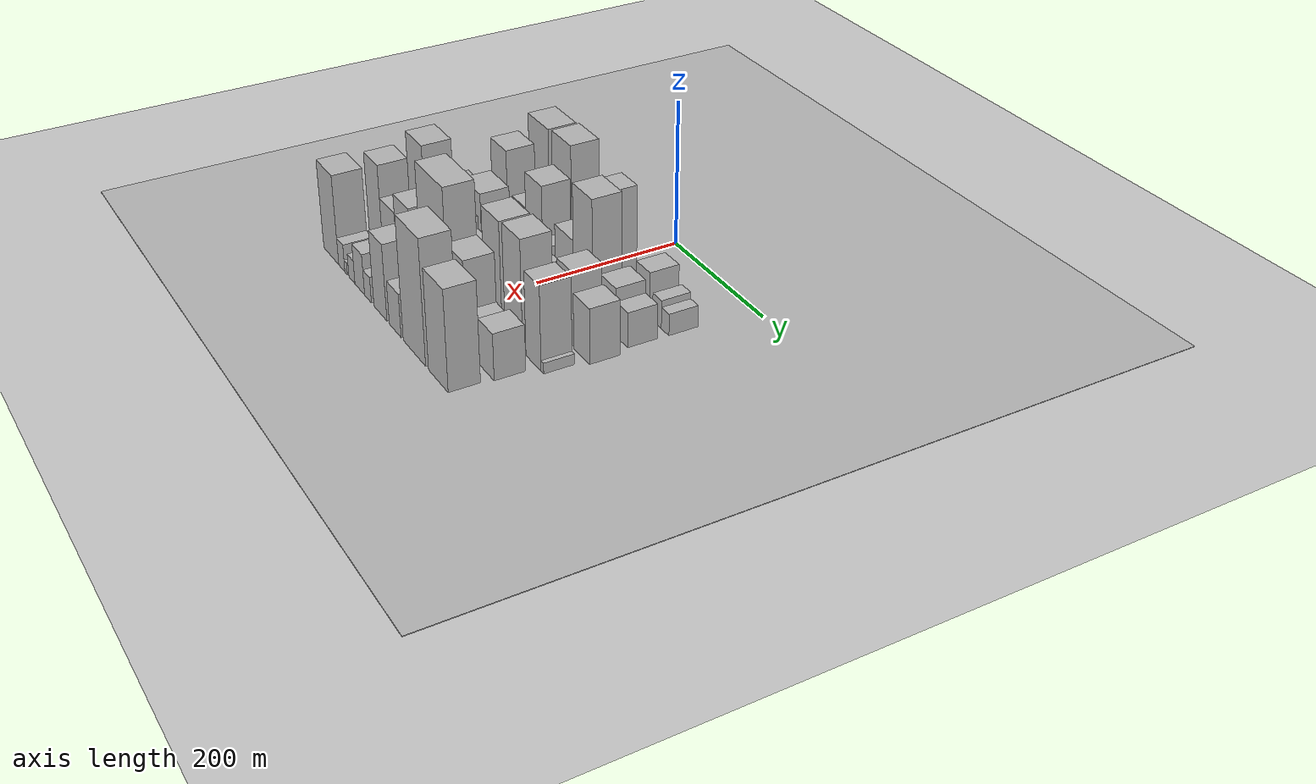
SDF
<sdf version="1.6">
 <world name="default">
  <include><name>ground_plane_1</name><uri>model://HANNAS_ground_plane</uri></include>
  <include>
   <name>ground_plane_2</name>
   <uri>model://HANNAS_ground_plane</uri>
   <pose>100 0 0  0 0 0</pose>
  </include>
  <model name="building_21">
   <static>1</static>
   <pose>100.0000 -186.2058 0 0.000000 0.000000 0.000000</pose>
   <link name="link">
    <pose>0 0 22.50 0 0 0</pose>
    <collision name="collision"><geometry><box><size>40.0000 26.3457 45.0000</size></box></geometry></collision>
    <visual name="visual">
     <cast_shadows>0</cast_shadows>
     <geometry><box><size>40.0000 26.3457 45.0000</size></box></geometry>
     <material>
      <script>
       <uri>model://HANNAS_wall/materials/scripts</uri>
       <uri>model://HANNAS_wall/materials/textures</uri>
       <name>vrc/HANNAS_wall</name>
      </script>
     </material>
    </visual>
   </link>
  </model>
  <model name="building_22">
   <static>1</static>
   <pose>100.0000 -145.5130 0 0.000000 0.000000 0.000000</pose>
   <link name="link">
    <pose>0 0 70.50 0 0 0</pose>
    <collision name="collision"><geometry><box><size>40.0000 55.0400 141.0000</size></box></geometry></collision>
    <visual name="visual">
     <cast_shadows>0</cast_shadows>
     <geometry><box><size>40.0000 55.0400 141.0000</size></box></geometry>
     <material>
      <script>
       <uri>model://HANNAS_wall/materials/scripts</uri>
       <uri>model://HANNAS_wall/materials/textures</uri>
       <name>vrc/HANNAS_wall</name>
      </script>
     </material>
    </visual>
   </link>
  </model>
  <model name="building_23">
   <static>1</static>
   <pose>100.0000 -83.5409 0 0.000000 0.000000 0.000000</pose>
   <link name="link">
    <pose>0 0 72.00 0 0 0</pose>
    <collision name="collision"><geometry><box><size>40.0000 50.9042 144.0000</size></box></geometry></collision>
    <visual name="visual">
     <cast_shadows>0</cast_shadows>
     <geometry><box><size>40.0000 50.9042 144.0000</size></box></geometry>
     <material>
      <script>
       <uri>model://HANNAS_wall/materials/scripts</uri>
       <uri>model://HANNAS_wall/materials/textures</uri>
       <name>vrc/HANNAS_wall</name>
      </script>
     </material>
    </visual>
   </link>
  </model>
  <model name="building_24">
   <static>1</static>
   <pose>100.0000 -44.2805 0 0.000000 0.000000 0.000000</pose>
   <link name="link">
    <pose>0 0 12.00 0 0 0</pose>
    <collision name="collision"><geometry><box><size>40.0000 11.6164 24.0000</size></box></geometry></collision>
    <visual name="visual">
     <cast_shadows>0</cast_shadows>
     <geometry><box><size>40.0000 11.6164 24.0000</size></box></geometry>
     <material>
      <script>
       <uri>model://HANNAS_wall/materials/scripts</uri>
       <uri>model://HANNAS_wall/materials/textures</uri>
       <name>vrc/HANNAS_wall</name>
      </script>
     </material>
    </visual>
   </link>
  </model>
  <model name="building_25">
   <static>1</static>
   <pose>100.0000 -22.2660 0 0.000000 0.000000 0.000000</pose>
   <link name="link">
    <pose>0 0 31.50 0 0 0</pose>
    <collision name="collision"><geometry><box><size>40.0000 32.4127 63.0000</size></box></geometry></collision>
    <visual name="visual">
     <cast_shadows>0</cast_shadows>
     <geometry><box><size>40.0000 32.4127 63.0000</size></box></geometry>
     <material>
      <script>
       <uri>model://HANNAS_wall/materials/scripts</uri>
       <uri>model://HANNAS_wall/materials/textures</uri>
       <name>vrc/HANNAS_wall</name>
      </script>
     </material>
    </visual>
   </link>
  </model>
  <model name="building_26">
   <static>1</static>
   <pose>100.0000 17.9681 0 0.000000 0.000000 0.000000</pose>
   <link name="link">
    <pose>0 0 61.50 0 0 0</pose>
    <collision name="collision"><geometry><box><size>40.0000 38.0555 123.0000</size></box></geometry></collision>
    <visual name="visual">
     <cast_shadows>0</cast_shadows>
     <geometry><box><size>40.0000 38.0555 123.0000</size></box></geometry>
     <material>
      <script>
       <uri>model://HANNAS_wall/materials/scripts</uri>
       <uri>model://HANNAS_wall/materials/textures</uri>
       <name>vrc/HANNAS_wall</name>
      </script>
     </material>
    </visual>
   </link>
  </model>
  <model name="building_27">
   <static>1</static>
   <pose>100.0000 120.3168 0 0.000000 0.000000 0.000000</pose>
   <link name="link">
    <pose>0 0 31.50 0 0 0</pose>
    <collision name="collision"><geometry><box><size>40.0000 32.2140 63.0000</size></box></geometry></collision>
    <visual name="visual">
     <cast_shadows>0</cast_shadows>
     <geometry><box><size>40.0000 32.2140 63.0000</size></box></geometry>
     <material>
      <script>
       <uri>model://HANNAS_wall/materials/scripts</uri>
       <uri>model://HANNAS_wall/materials/textures</uri>
       <name>vrc/HANNAS_wall</name>
      </script>
     </material>
    </visual>
   </link>
  </model>
  <model name="building_28">
   <static>1</static>
   <pose>100.0000 153.5409 0 0.000000 0.000000 0.000000</pose>
   <link name="link">
    <pose>0 0 19.50 0 0 0</pose>
    <collision name="collision"><geometry><box><size>40.0000 20.2342 39.0000</size></box></geometry></collision>
    <visual name="visual">
     <cast_shadows>0</cast_shadows>
     <geometry><box><size>40.0000 20.2342 39.0000</size></box></geometry>
     <material>
      <script>
       <uri>model://HANNAS_wall/materials/scripts</uri>
       <uri>model://HANNAS_wall/materials/textures</uri>
       <name>vrc/HANNAS_wall</name>
      </script>
     </material>
    </visual>
   </link>
  </model>
  <model name="building_29">
   <static>1</static>
   <pose>100.0000 172.3773 0 0.000000 0.000000 0.000000</pose>
   <link name="link">
    <pose>0 0 15.00 0 0 0</pose>
    <collision name="collision"><geometry><box><size>40.0000 17.4387 30.0000</size></box></geometry></collision>
    <visual name="visual">
     <cast_shadows>0</cast_shadows>
     <geometry><box><size>40.0000 17.4387 30.0000</size></box></geometry>
     <material>
      <script>
       <uri>model://HANNAS_wall/materials/scripts</uri>
       <uri>model://HANNAS_wall/materials/textures</uri>
       <name>vrc/HANNAS_wall</name>
      </script>
     </material>
    </visual>
   </link>
  </model>
  <model name="building_67">
   <static>1</static>
   <pose>155.0000 -149.7704 0 0.000000 0.000000 0.000000</pose>
   <link name="link">
    <pose>0 0 60.00 0 0 0</pose>
    <collision name="collision"><geometry><box><size>40.0000 44.0871 120.0000</size></box></geometry></collision>
    <visual name="visual">
     <cast_shadows>0</cast_shadows>
     <geometry><box><size>40.0000 44.0871 120.0000</size></box></geometry>
     <material>
      <script>
       <uri>model://HANNAS_wall/materials/scripts</uri>
       <uri>model://HANNAS_wall/materials/textures</uri>
       <name>vrc/HANNAS_wall</name>
      </script>
     </material>
    </visual>
   </link>
  </model>
  <model name="building_68">
   <static>1</static>
   <pose>155.0000 -123.2995 0 0.000000 0.000000 0.000000</pose>
   <link name="link">
    <pose>0 0 10.50 0 0 0</pose>
    <collision name="collision"><geometry><box><size>40.0000 8.8548 21.0000</size></box></geometry></collision>
    <visual name="visual">
     <cast_shadows>0</cast_shadows>
     <geometry><box><size>40.0000 8.8548 21.0000</size></box></geometry>
     <material>
      <script>
       <uri>model://HANNAS_wall/materials/scripts</uri>
       <uri>model://HANNAS_wall/materials/textures</uri>
       <name>vrc/HANNAS_wall</name>
      </script>
     </material>
    </visual>
   </link>
  </model>
  <model name="building_69">
   <static>1</static>
   <pose>155.0000 -95.2043 0 0.000000 0.000000 0.000000</pose>
   <link name="link">
    <pose>0 0 31.50 0 0 0</pose>
    <collision name="collision"><geometry><box><size>40.0000 37.3355 63.0000</size></box></geometry></collision>
    <visual name="visual">
     <cast_shadows>0</cast_shadows>
     <geometry><box><size>40.0000 37.3355 63.0000</size></box></geometry>
     <material>
      <script>
       <uri>model://HANNAS_wall/materials/scripts</uri>
       <uri>model://HANNAS_wall/materials/textures</uri>
       <name>vrc/HANNAS_wall</name>
      </script>
     </material>
    </visual>
   </link>
  </model>
  <model name="building_70">
   <static>1</static>
   <pose>155.0000 -54.2344 0 0.000000 0.000000 0.000000</pose>
   <link name="link">
    <pose>0 0 57.00 0 0 0</pose>
    <collision name="collision"><geometry><box><size>40.0000 44.6043 114.0000</size></box></geometry></collision>
    <visual name="visual">
     <cast_shadows>0</cast_shadows>
     <geometry><box><size>40.0000 44.6043 114.0000</size></box></geometry>
     <material>
      <script>
       <uri>model://HANNAS_wall/materials/scripts</uri>
       <uri>model://HANNAS_wall/materials/textures</uri>
       <name>vrc/HANNAS_wall</name>
      </script>
     </material>
    </visual>
   </link>
  </model>
  <model name="building_71">
   <static>1</static>
   <pose>155.0000 -19.7303 0 0.000000 0.000000 0.000000</pose>
   <link name="link">
    <pose>0 0 21.00 0 0 0</pose>
    <collision name="collision"><geometry><box><size>40.0000 24.4039 42.0000</size></box></geometry></collision>
    <visual name="visual">
     <cast_shadows>0</cast_shadows>
     <geometry><box><size>40.0000 24.4039 42.0000</size></box></geometry>
     <material>
      <script>
       <uri>model://HANNAS_wall/materials/scripts</uri>
       <uri>model://HANNAS_wall/materials/textures</uri>
       <name>vrc/HANNAS_wall</name>
      </script>
     </material>
    </visual>
   </link>
  </model>
  <model name="building_72">
   <static>1</static>
   <pose>155.0000 24.8580 0 0.000000 0.000000 0.000000</pose>
   <link name="link">
    <pose>0 0 39.00 0 0 0</pose>
    <collision name="collision"><geometry><box><size>40.0000 46.7727 78.0000</size></box></geometry></collision>
    <visual name="visual">
     <cast_shadows>0</cast_shadows>
     <geometry><box><size>40.0000 46.7727 78.0000</size></box></geometry>
     <material>
      <script>
       <uri>model://HANNAS_wall/materials/scripts</uri>
       <uri>model://HANNAS_wall/materials/textures</uri>
       <name>vrc/HANNAS_wall</name>
      </script>
     </material>
    </visual>
   </link>
  </model>
  <model name="building_73">
   <static>1</static>
   <pose>155.0000 71.9212 0 0.000000 0.000000 0.000000</pose>
   <link name="link">
    <pose>0 0 78.00 0 0 0</pose>
    <collision name="collision"><geometry><box><size>40.0000 47.3537 156.0000</size></box></geometry></collision>
    <visual name="visual">
     <cast_shadows>0</cast_shadows>
     <geometry><box><size>40.0000 47.3537 156.0000</size></box></geometry>
     <material>
      <script>
       <uri>model://HANNAS_wall/materials/scripts</uri>
       <uri>model://HANNAS_wall/materials/textures</uri>
       <name>vrc/HANNAS_wall</name>
      </script>
     </material>
    </visual>
   </link>
  </model>
  <model name="building_74">
   <static>1</static>
   <pose>155.0000 100.2615 0 0.000000 0.000000 0.000000</pose>
   <link name="link">
    <pose>0 0 10.50 0 0 0</pose>
    <collision name="collision"><geometry><box><size>40.0000 9.3268 21.0000</size></box></geometry></collision>
    <visual name="visual">
     <cast_shadows>0</cast_shadows>
     <geometry><box><size>40.0000 9.3268 21.0000</size></box></geometry>
     <material>
      <script>
       <uri>model://HANNAS_wall/materials/scripts</uri>
       <uri>model://HANNAS_wall/materials/textures</uri>
       <name>vrc/HANNAS_wall</name>
      </script>
     </material>
    </visual>
   </link>
  </model>
  <model name="building_75">
   <static>1</static>
   <pose>155.0000 133.3745 0 0.000000 0.000000 0.000000</pose>
   <link name="link">
    <pose>0 0 33.00 0 0 0</pose>
    <collision name="collision"><geometry><box><size>40.0000 36.8993 66.0000</size></box></geometry></collision>
    <visual name="visual">
     <cast_shadows>0</cast_shadows>
     <geometry><box><size>40.0000 36.8993 66.0000</size></box></geometry>
     <material>
      <script>
       <uri>model://HANNAS_wall/materials/scripts</uri>
       <uri>model://HANNAS_wall/materials/textures</uri>
       <name>vrc/HANNAS_wall</name>
      </script>
     </material>
    </visual>
   </link>
  </model>
  <model name="building_76">
   <static>1</static>
   <pose>155.0000 165.8428 0 0.000000 0.000000 0.000000</pose>
   <link name="link">
    <pose>0 0 24.00 0 0 0</pose>
    <collision name="collision"><geometry><box><size>40.0000 28.0374 48.0000</size></box></geometry></collision>
    <visual name="visual">
     <cast_shadows>0</cast_shadows>
     <geometry><box><size>40.0000 28.0374 48.0000</size></box></geometry>
     <material>
      <script>
       <uri>model://HANNAS_wall/materials/scripts</uri>
       <uri>model://HANNAS_wall/materials/textures</uri>
       <name>vrc/HANNAS_wall</name>
      </script>
     </material>
    </visual>
   </link>
  </model>
  <model name="building_122">
   <static>1</static>
   <pose>210.0000 -193.6211 0 0.000000 0.000000 0.000000</pose>
   <link name="link">
    <pose>0 0 30.00 0 0 0</pose>
    <collision name="collision"><geometry><box><size>40.0000 32.4631 60.0000</size></box></geometry></collision>
    <visual name="visual">
     <cast_shadows>0</cast_shadows>
     <geometry><box><size>40.0000 32.4631 60.0000</size></box></geometry>
     <material>
      <script>
       <uri>model://HANNAS_wall/materials/scripts</uri>
       <uri>model://HANNAS_wall/materials/textures</uri>
       <name>vrc/HANNAS_wall</name>
      </script>
     </material>
    </visual>
   </link>
  </model>
  <model name="building_123">
   <static>1</static>
   <pose>210.0000 -159.8976 0 0.000000 0.000000 0.000000</pose>
   <link name="link">
    <pose>0 0 30.00 0 0 0</pose>
    <collision name="collision"><geometry><box><size>40.0000 34.9839 60.0000</size></box></geometry></collision>
    <visual name="visual">
     <cast_shadows>0</cast_shadows>
     <geometry><box><size>40.0000 34.9839 60.0000</size></box></geometry>
     <material>
      <script>
       <uri>model://HANNAS_wall/materials/scripts</uri>
       <uri>model://HANNAS_wall/materials/textures</uri>
       <name>vrc/HANNAS_wall</name>
      </script>
     </material>
    </visual>
   </link>
  </model>
  <model name="building_124">
   <static>1</static>
   <pose>210.0000 -116.8941 0 0.000000 0.000000 0.000000</pose>
   <link name="link">
    <pose>0 0 45.00 0 0 0</pose>
    <collision name="collision"><geometry><box><size>40.0000 51.0232 90.0000</size></box></geometry></collision>
    <visual name="visual">
     <cast_shadows>0</cast_shadows>
     <geometry><box><size>40.0000 51.0232 90.0000</size></box></geometry>
     <material>
      <script>
       <uri>model://HANNAS_wall/materials/scripts</uri>
       <uri>model://HANNAS_wall/materials/textures</uri>
       <name>vrc/HANNAS_wall</name>
      </script>
     </material>
    </visual>
   </link>
  </model>
  <model name="building_125">
   <static>1</static>
   <pose>210.0000 -74.0264 0 0.000000 0.000000 0.000000</pose>
   <link name="link">
    <pose>0 0 31.50 0 0 0</pose>
    <collision name="collision"><geometry><box><size>40.0000 34.7122 63.0000</size></box></geometry></collision>
    <visual name="visual">
     <cast_shadows>0</cast_shadows>
     <geometry><box><size>40.0000 34.7122 63.0000</size></box></geometry>
     <material>
      <script>
       <uri>model://HANNAS_wall/materials/scripts</uri>
       <uri>model://HANNAS_wall/materials/textures</uri>
       <name>vrc/HANNAS_wall</name>
      </script>
     </material>
    </visual>
   </link>
  </model>
  <model name="building_126">
   <static>1</static>
   <pose>210.0000 -45.7824 0 0.000000 0.000000 0.000000</pose>
   <link name="link">
    <pose>0 0 19.50 0 0 0</pose>
    <collision name="collision"><geometry><box><size>40.0000 21.7757 39.0000</size></box></geometry></collision>
    <visual name="visual">
     <cast_shadows>0</cast_shadows>
     <geometry><box><size>40.0000 21.7757 39.0000</size></box></geometry>
     <material>
      <script>
       <uri>model://HANNAS_wall/materials/scripts</uri>
       <uri>model://HANNAS_wall/materials/textures</uri>
       <name>vrc/HANNAS_wall</name>
      </script>
     </material>
    </visual>
   </link>
  </model>
  <model name="building_127">
   <static>1</static>
   <pose>210.0000 -17.3884 0 0.000000 0.000000 0.000000</pose>
   <link name="link">
    <pose>0 0 33.00 0 0 0</pose>
    <collision name="collision"><geometry><box><size>40.0000 35.0123 66.0000</size></box></geometry></collision>
    <visual name="visual">
     <cast_shadows>0</cast_shadows>
     <geometry><box><size>40.0000 35.0123 66.0000</size></box></geometry>
     <material>
      <script>
       <uri>model://HANNAS_wall/materials/scripts</uri>
       <uri>model://HANNAS_wall/materials/textures</uri>
       <name>vrc/HANNAS_wall</name>
      </script>
     </material>
    </visual>
   </link>
  </model>
  <model name="building_128">
   <static>1</static>
   <pose>210.0000 3.6164 0 0.000000 0.000000 0.000000</pose>
   <link name="link">
    <pose>0 0 7.50 0 0 0</pose>
    <collision name="collision"><geometry><box><size>40.0000 6.9972 15.0000</size></box></geometry></collision>
    <visual name="visual">
     <cast_shadows>0</cast_shadows>
     <geometry><box><size>40.0000 6.9972 15.0000</size></box></geometry>
     <material>
      <script>
       <uri>model://HANNAS_wall/materials/scripts</uri>
       <uri>model://HANNAS_wall/materials/textures</uri>
       <name>vrc/HANNAS_wall</name>
      </script>
     </material>
    </visual>
   </link>
  </model>
  <model name="building_129">
   <static>1</static>
   <pose>210.0000 27.3994 0 0.000000 0.000000 0.000000</pose>
   <link name="link">
    <pose>0 0 25.50 0 0 0</pose>
    <collision name="collision"><geometry><box><size>40.0000 26.5687 51.0000</size></box></geometry></collision>
    <visual name="visual">
     <cast_shadows>0</cast_shadows>
     <geometry><box><size>40.0000 26.5687 51.0000</size></box></geometry>
     <material>
      <script>
       <uri>model://HANNAS_wall/materials/scripts</uri>
       <uri>model://HANNAS_wall/materials/textures</uri>
       <name>vrc/HANNAS_wall</name>
      </script>
     </material>
    </visual>
   </link>
  </model>
  <model name="building_130">
   <static>1</static>
   <pose>210.0000 53.1228 0 0.000000 0.000000 0.000000</pose>
   <link name="link">
    <pose>0 0 21.00 0 0 0</pose>
    <collision name="collision"><geometry><box><size>40.0000 24.8782 42.0000</size></box></geometry></collision>
    <visual name="visual">
     <cast_shadows>0</cast_shadows>
     <geometry><box><size>40.0000 24.8782 42.0000</size></box></geometry>
     <material>
      <script>
       <uri>model://HANNAS_wall/materials/scripts</uri>
       <uri>model://HANNAS_wall/materials/textures</uri>
       <name>vrc/HANNAS_wall</name>
      </script>
     </material>
    </visual>
   </link>
  </model>
  <model name="building_131">
   <static>1</static>
   <pose>210.0000 90.8066 0 0.000000 0.000000 0.000000</pose>
   <link name="link">
    <pose>0 0 34.50 0 0 0</pose>
    <collision name="collision"><geometry><box><size>40.0000 40.4894 69.0000</size></box></geometry></collision>
    <visual name="visual">
     <cast_shadows>0</cast_shadows>
     <geometry><box><size>40.0000 40.4894 69.0000</size></box></geometry>
     <material>
      <script>
       <uri>model://HANNAS_wall/materials/scripts</uri>
       <uri>model://HANNAS_wall/materials/textures</uri>
       <name>vrc/HANNAS_wall</name>
      </script>
     </material>
    </visual>
   </link>
  </model>
  <model name="building_132">
   <static>1</static>
   <pose>210.0000 128.0512 0 0.000000 0.000000 0.000000</pose>
   <link name="link">
    <pose>0 0 51.00 0 0 0</pose>
    <collision name="collision"><geometry><box><size>40.0000 33.9999 102.0000</size></box></geometry></collision>
    <visual name="visual">
     <cast_shadows>0</cast_shadows>
     <geometry><box><size>40.0000 33.9999 102.0000</size></box></geometry>
     <material>
      <script>
       <uri>model://HANNAS_wall/materials/scripts</uri>
       <uri>model://HANNAS_wall/materials/textures</uri>
       <name>vrc/HANNAS_wall</name>
      </script>
     </material>
    </visual>
   </link>
  </model>
  <model name="building_133">
   <static>1</static>
   <pose>210.0000 169.4669 0 0.000000 0.000000 0.000000</pose>
   <link name="link">
    <pose>0 0 37.50 0 0 0</pose>
    <collision name="collision"><geometry><box><size>40.0000 38.8314 75.0000</size></box></geometry></collision>
    <visual name="visual">
     <cast_shadows>0</cast_shadows>
     <geometry><box><size>40.0000 38.8314 75.0000</size></box></geometry>
     <material>
      <script>
       <uri>model://HANNAS_wall/materials/scripts</uri>
       <uri>model://HANNAS_wall/materials/textures</uri>
       <name>vrc/HANNAS_wall</name>
      </script>
     </material>
    </visual>
   </link>
  </model>
  <model name="building_175">
   <static>1</static>
   <pose>265.0000 -195.2497 0 0.000000 0.000000 0.000000</pose>
   <link name="link">
    <pose>0 0 19.50 0 0 0</pose>
    <collision name="collision"><geometry><box><size>40.0000 19.9345 39.0000</size></box></geometry></collision>
    <visual name="visual">
     <cast_shadows>0</cast_shadows>
     <geometry><box><size>40.0000 19.9345 39.0000</size></box></geometry>
     <material>
      <script>
       <uri>model://HANNAS_wall/materials/scripts</uri>
       <uri>model://HANNAS_wall/materials/textures</uri>
       <name>vrc/HANNAS_wall</name>
      </script>
     </material>
    </visual>
   </link>
  </model>
  <model name="building_176">
   <static>1</static>
   <pose>265.0000 -161.2741 0 0.000000 0.000000 0.000000</pose>
   <link name="link">
    <pose>0 0 75.00 0 0 0</pose>
    <collision name="collision"><geometry><box><size>40.0000 48.0168 150.0000</size></box></geometry></collision>
    <visual name="visual">
     <cast_shadows>0</cast_shadows>
     <geometry><box><size>40.0000 48.0168 150.0000</size></box></geometry>
     <material>
      <script>
       <uri>model://HANNAS_wall/materials/scripts</uri>
       <uri>model://HANNAS_wall/materials/textures</uri>
       <name>vrc/HANNAS_wall</name>
      </script>
     </material>
    </visual>
   </link>
  </model>
  <model name="building_177">
   <static>1</static>
   <pose>265.0000 -124.7524 0 0.000000 0.000000 0.000000</pose>
   <link name="link">
    <pose>0 0 24.00 0 0 0</pose>
    <collision name="collision"><geometry><box><size>40.0000 25.0265 48.0000</size></box></geometry></collision>
    <visual name="visual">
     <cast_shadows>0</cast_shadows>
     <geometry><box><size>40.0000 25.0265 48.0000</size></box></geometry>
     <material>
      <script>
       <uri>model://HANNAS_wall/materials/scripts</uri>
       <uri>model://HANNAS_wall/materials/textures</uri>
       <name>vrc/HANNAS_wall</name>
      </script>
     </material>
    </visual>
   </link>
  </model>
  <model name="building_178">
   <static>1</static>
   <pose>265.0000 -89.7969 0 0.000000 0.000000 0.000000</pose>
   <link name="link">
    <pose>0 0 37.50 0 0 0</pose>
    <collision name="collision"><geometry><box><size>40.0000 44.8846 75.0000</size></box></geometry></collision>
    <visual name="visual">
     <cast_shadows>0</cast_shadows>
     <geometry><box><size>40.0000 44.8846 75.0000</size></box></geometry>
     <material>
      <script>
       <uri>model://HANNAS_wall/materials/scripts</uri>
       <uri>model://HANNAS_wall/materials/textures</uri>
       <name>vrc/HANNAS_wall</name>
      </script>
     </material>
    </visual>
   </link>
  </model>
  <model name="building_179">
   <static>1</static>
   <pose>265.0000 -52.4013 0 0.000000 0.000000 0.000000</pose>
   <link name="link">
    <pose>0 0 28.50 0 0 0</pose>
    <collision name="collision"><geometry><box><size>40.0000 29.9065 57.0000</size></box></geometry></collision>
    <visual name="visual">
     <cast_shadows>0</cast_shadows>
     <geometry><box><size>40.0000 29.9065 57.0000</size></box></geometry>
     <material>
      <script>
       <uri>model://HANNAS_wall/materials/scripts</uri>
       <uri>model://HANNAS_wall/materials/textures</uri>
       <name>vrc/HANNAS_wall</name>
      </script>
     </material>
    </visual>
   </link>
  </model>
  <model name="building_180">
   <static>1</static>
   <pose>265.0000 -25.2224 0 0.000000 0.000000 0.000000</pose>
   <link name="link">
    <pose>0 0 13.50 0 0 0</pose>
    <collision name="collision"><geometry><box><size>40.0000 12.4513 27.0000</size></box></geometry></collision>
    <visual name="visual">
     <cast_shadows>0</cast_shadows>
     <geometry><box><size>40.0000 12.4513 27.0000</size></box></geometry>
     <material>
      <script>
       <uri>model://HANNAS_wall/materials/scripts</uri>
       <uri>model://HANNAS_wall/materials/textures</uri>
       <name>vrc/HANNAS_wall</name>
      </script>
     </material>
    </visual>
   </link>
  </model>
  <model name="building_181">
   <static>1</static>
   <pose>265.0000 -10.8757 0 0.000000 0.000000 0.000000</pose>
   <link name="link">
    <pose>0 0 15.00 0 0 0</pose>
    <collision name="collision"><geometry><box><size>40.0000 16.2422 30.0000</size></box></geometry></collision>
    <visual name="visual">
     <cast_shadows>0</cast_shadows>
     <geometry><box><size>40.0000 16.2422 30.0000</size></box></geometry>
     <material>
      <script>
       <uri>model://HANNAS_wall/materials/scripts</uri>
       <uri>model://HANNAS_wall/materials/textures</uri>
       <name>vrc/HANNAS_wall</name>
      </script>
     </material>
    </visual>
   </link>
  </model>
  <model name="building_182">
   <static>1</static>
   <pose>265.0000 17.3211 0 0.000000 0.000000 0.000000</pose>
   <link name="link">
    <pose>0 0 24.00 0 0 0</pose>
    <collision name="collision"><geometry><box><size>40.0000 24.1514 48.0000</size></box></geometry></collision>
    <visual name="visual">
     <cast_shadows>0</cast_shadows>
     <geometry><box><size>40.0000 24.1514 48.0000</size></box></geometry>
     <material>
      <script>
       <uri>model://HANNAS_wall/materials/scripts</uri>
       <uri>model://HANNAS_wall/materials/textures</uri>
       <name>vrc/HANNAS_wall</name>
      </script>
     </material>
    </visual>
   </link>
  </model>
  <model name="building_183">
   <static>1</static>
   <pose>265.0000 52.2845 0 0.000000 0.000000 0.000000</pose>
   <link name="link">
    <pose>0 0 73.50 0 0 0</pose>
    <collision name="collision"><geometry><box><size>40.0000 45.7754 147.0000</size></box></geometry></collision>
    <visual name="visual">
     <cast_shadows>0</cast_shadows>
     <geometry><box><size>40.0000 45.7754 147.0000</size></box></geometry>
     <material>
      <script>
       <uri>model://HANNAS_wall/materials/scripts</uri>
       <uri>model://HANNAS_wall/materials/textures</uri>
       <name>vrc/HANNAS_wall</name>
      </script>
     </material>
    </visual>
   </link>
  </model>
  <model name="building_184">
   <static>1</static>
   <pose>265.0000 105.7808 0 0.000000 0.000000 0.000000</pose>
   <link name="link">
    <pose>0 0 75.00 0 0 0</pose>
    <collision name="collision"><geometry><box><size>40.0000 45.2170 150.0000</size></box></geometry></collision>
    <visual name="visual">
     <cast_shadows>0</cast_shadows>
     <geometry><box><size>40.0000 45.2170 150.0000</size></box></geometry>
     <material>
      <script>
       <uri>model://HANNAS_wall/materials/scripts</uri>
       <uri>model://HANNAS_wall/materials/textures</uri>
       <name>vrc/HANNAS_wall</name>
      </script>
     </material>
    </visual>
   </link>
  </model>
  <model name="building_185">
   <static>1</static>
   <pose>265.0000 155.1707 0 0.000000 0.000000 0.000000</pose>
   <link name="link">
    <pose>0 0 57.00 0 0 0</pose>
    <collision name="collision"><geometry><box><size>40.0000 37.5629 114.0000</size></box></geometry></collision>
    <visual name="visual">
     <cast_shadows>0</cast_shadows>
     <geometry><box><size>40.0000 37.5629 114.0000</size></box></geometry>
     <material>
      <script>
       <uri>model://HANNAS_wall/materials/scripts</uri>
       <uri>model://HANNAS_wall/materials/textures</uri>
       <name>vrc/HANNAS_wall</name>
      </script>
     </material>
    </visual>
   </link>
  </model>
  <model name="building_186">
   <static>1</static>
   <pose>265.0000 177.1389 0 0.000000 0.000000 0.000000</pose>
   <link name="link">
    <pose>0 0 7.50 0 0 0</pose>
    <collision name="collision"><geometry><box><size>40.0000 6.3734 15.0000</size></box></geometry></collision>
    <visual name="visual">
     <cast_shadows>0</cast_shadows>
     <geometry><box><size>40.0000 6.3734 15.0000</size></box></geometry>
     <material>
      <script>
       <uri>model://HANNAS_wall/materials/scripts</uri>
       <uri>model://HANNAS_wall/materials/textures</uri>
       <name>vrc/HANNAS_wall</name>
      </script>
     </material>
    </visual>
   </link>
  </model>
  <model name="building_230">
   <static>1</static>
   <pose>320.0000 -169.7193 0 0.000000 0.000000 0.000000</pose>
   <link name="link">
    <pose>0 0 66.00 0 0 0</pose>
    <collision name="collision"><geometry><box><size>40.0000 42.7615 132.0000</size></box></geometry></collision>
    <visual name="visual">
     <cast_shadows>0</cast_shadows>
     <geometry><box><size>40.0000 42.7615 132.0000</size></box></geometry>
     <material>
      <script>
       <uri>model://HANNAS_wall/materials/scripts</uri>
       <uri>model://HANNAS_wall/materials/textures</uri>
       <name>vrc/HANNAS_wall</name>
      </script>
     </material>
    </visual>
   </link>
  </model>
  <model name="building_231">
   <static>1</static>
   <pose>320.0000 -125.5343 0 0.000000 0.000000 0.000000</pose>
   <link name="link">
    <pose>0 0 43.50 0 0 0</pose>
    <collision name="collision"><geometry><box><size>40.0000 45.6085 87.0000</size></box></geometry></collision>
    <visual name="visual">
     <cast_shadows>0</cast_shadows>
     <geometry><box><size>40.0000 45.6085 87.0000</size></box></geometry>
     <material>
      <script>
       <uri>model://HANNAS_wall/materials/scripts</uri>
       <uri>model://HANNAS_wall/materials/textures</uri>
       <name>vrc/HANNAS_wall</name>
      </script>
     </material>
    </visual>
   </link>
  </model>
  <model name="building_232">
   <static>1</static>
   <pose>320.0000 -81.0493 0 0.000000 0.000000 0.000000</pose>
   <link name="link">
    <pose>0 0 57.00 0 0 0</pose>
    <collision name="collision"><geometry><box><size>40.0000 43.3614 114.0000</size></box></geometry></collision>
    <visual name="visual">
     <cast_shadows>0</cast_shadows>
     <geometry><box><size>40.0000 43.3614 114.0000</size></box></geometry>
     <material>
      <script>
       <uri>model://HANNAS_wall/materials/scripts</uri>
       <uri>model://HANNAS_wall/materials/textures</uri>
       <name>vrc/HANNAS_wall</name>
      </script>
     </material>
    </visual>
   </link>
  </model>
  <model name="building_233">
   <static>1</static>
   <pose>320.0000 -43.9360 0 0.000000 0.000000 0.000000</pose>
   <link name="link">
    <pose>0 0 30.00 0 0 0</pose>
    <collision name="collision"><geometry><box><size>40.0000 30.8652 60.0000</size></box></geometry></collision>
    <visual name="visual">
     <cast_shadows>0</cast_shadows>
     <geometry><box><size>40.0000 30.8652 60.0000</size></box></geometry>
     <material>
      <script>
       <uri>model://HANNAS_wall/materials/scripts</uri>
       <uri>model://HANNAS_wall/materials/textures</uri>
       <name>vrc/HANNAS_wall</name>
      </script>
     </material>
    </visual>
   </link>
  </model>
  <model name="building_234">
   <static>1</static>
   <pose>320.0000 9.0968 0 0.000000 0.000000 0.000000</pose>
   <link name="link">
    <pose>0 0 96.00 0 0 0</pose>
    <collision name="collision"><geometry><box><size>40.0000 75.2006 192.0000</size></box></geometry></collision>
    <visual name="visual">
     <cast_shadows>0</cast_shadows>
     <geometry><box><size>40.0000 75.2006 192.0000</size></box></geometry>
     <material>
      <script>
       <uri>model://HANNAS_wall/materials/scripts</uri>
       <uri>model://HANNAS_wall/materials/textures</uri>
       <name>vrc/HANNAS_wall</name>
      </script>
     </material>
    </visual>
   </link>
  </model>
  <model name="building_235">
   <static>1</static>
   <pose>320.0000 69.8630 0 0.000000 0.000000 0.000000</pose>
   <link name="link">
    <pose>0 0 60.00 0 0 0</pose>
    <collision name="collision"><geometry><box><size>40.0000 46.3316 120.0000</size></box></geometry></collision>
    <visual name="visual">
     <cast_shadows>0</cast_shadows>
     <geometry><box><size>40.0000 46.3316 120.0000</size></box></geometry>
     <material>
      <script>
       <uri>model://HANNAS_wall/materials/scripts</uri>
       <uri>model://HANNAS_wall/materials/textures</uri>
       <name>vrc/HANNAS_wall</name>
      </script>
     </material>
    </visual>
   </link>
  </model>
  <model name="building_236">
   <static>1</static>
   <pose>320.0000 107.8897 0 0.000000 0.000000 0.000000</pose>
   <link name="link">
    <pose>0 0 27.00 0 0 0</pose>
    <collision name="collision"><geometry><box><size>40.0000 29.7218 54.0000</size></box></geometry></collision>
    <visual name="visual">
     <cast_shadows>0</cast_shadows>
     <geometry><box><size>40.0000 29.7218 54.0000</size></box></geometry>
     <material>
      <script>
       <uri>model://HANNAS_wall/materials/scripts</uri>
       <uri>model://HANNAS_wall/materials/textures</uri>
       <name>vrc/HANNAS_wall</name>
      </script>
     </material>
    </visual>
   </link>
  </model>
  <model name="building_237">
   <static>1</static>
   <pose>320.0000 146.4699 0 0.000000 0.000000 0.000000</pose>
   <link name="link">
    <pose>0 0 31.50 0 0 0</pose>
    <collision name="collision"><geometry><box><size>40.0000 37.4387 63.0000</size></box></geometry></collision>
    <visual name="visual">
     <cast_shadows>0</cast_shadows>
     <geometry><box><size>40.0000 37.4387 63.0000</size></box></geometry>
     <material>
      <script>
       <uri>model://HANNAS_wall/materials/scripts</uri>
       <uri>model://HANNAS_wall/materials/textures</uri>
       <name>vrc/HANNAS_wall</name>
      </script>
     </material>
    </visual>
   </link>
  </model>
  <model name="building_278">
   <static>1</static>
   <pose>375.0000 -186.5270 0 0.000000 0.000000 0.000000</pose>
   <link name="link">
    <pose>0 0 63.00 0 0 0</pose>
    <collision name="collision"><geometry><box><size>40.0000 50.0513 126.0000</size></box></geometry></collision>
    <visual name="visual">
     <cast_shadows>0</cast_shadows>
     <geometry><box><size>40.0000 50.0513 126.0000</size></box></geometry>
     <material>
      <script>
       <uri>model://HANNAS_wall/materials/scripts</uri>
       <uri>model://HANNAS_wall/materials/textures</uri>
       <name>vrc/HANNAS_wall</name>
      </script>
     </material>
    </visual>
   </link>
  </model>
  <model name="building_279">
   <static>1</static>
   <pose>375.0000 -151.4767 0 0.000000 0.000000 0.000000</pose>
   <link name="link">
    <pose>0 0 19.50 0 0 0</pose>
    <collision name="collision"><geometry><box><size>40.0000 20.0492 39.0000</size></box></geometry></collision>
    <visual name="visual">
     <cast_shadows>0</cast_shadows>
     <geometry><box><size>40.0000 20.0492 39.0000</size></box></geometry>
     <material>
      <script>
       <uri>model://HANNAS_wall/materials/scripts</uri>
       <uri>model://HANNAS_wall/materials/textures</uri>
       <name>vrc/HANNAS_wall</name>
      </script>
     </material>
    </visual>
   </link>
  </model>
  <model name="building_280">
   <static>1</static>
   <pose>375.0000 -137.3874 0 0.000000 0.000000 0.000000</pose>
   <link name="link">
    <pose>0 0 9.00 0 0 0</pose>
    <collision name="collision"><geometry><box><size>40.0000 8.1295 18.0000</size></box></geometry></collision>
    <visual name="visual">
     <cast_shadows>0</cast_shadows>
     <geometry><box><size>40.0000 8.1295 18.0000</size></box></geometry>
     <material>
      <script>
       <uri>model://HANNAS_wall/materials/scripts</uri>
       <uri>model://HANNAS_wall/materials/textures</uri>
       <name>vrc/HANNAS_wall</name>
      </script>
     </material>
    </visual>
   </link>
  </model>
  <model name="building_281">
   <static>1</static>
   <pose>375.0000 -118.7007 0 0.000000 0.000000 0.000000</pose>
   <link name="link">
    <pose>0 0 16.50 0 0 0</pose>
    <collision name="collision"><geometry><box><size>40.0000 19.2438 33.0000</size></box></geometry></collision>
    <visual name="visual">
     <cast_shadows>0</cast_shadows>
     <geometry><box><size>40.0000 19.2438 33.0000</size></box></geometry>
     <material>
      <script>
       <uri>model://HANNAS_wall/materials/scripts</uri>
       <uri>model://HANNAS_wall/materials/textures</uri>
       <name>vrc/HANNAS_wall</name>
      </script>
     </material>
    </visual>
   </link>
  </model>
  <model name="building_282">
   <static>1</static>
   <pose>375.0000 -93.8060 0 0.000000 0.000000 0.000000</pose>
   <link name="link">
    <pose>0 0 28.50 0 0 0</pose>
    <collision name="collision"><geometry><box><size>40.0000 30.5456 57.0000</size></box></geometry></collision>
    <visual name="visual">
     <cast_shadows>0</cast_shadows>
     <geometry><box><size>40.0000 30.5456 57.0000</size></box></geometry>
     <material>
      <script>
       <uri>model://HANNAS_wall/materials/scripts</uri>
       <uri>model://HANNAS_wall/materials/textures</uri>
       <name>vrc/HANNAS_wall</name>
      </script>
     </material>
    </visual>
   </link>
  </model>
  <model name="building_283">
   <static>1</static>
   <pose>375.0000 -68.0099 0 0.000000 0.000000 0.000000</pose>
   <link name="link">
    <pose>0 0 18.00 0 0 0</pose>
    <collision name="collision"><geometry><box><size>40.0000 21.0466 36.0000</size></box></geometry></collision>
    <visual name="visual">
     <cast_shadows>0</cast_shadows>
     <geometry><box><size>40.0000 21.0466 36.0000</size></box></geometry>
     <material>
      <script>
       <uri>model://HANNAS_wall/materials/scripts</uri>
       <uri>model://HANNAS_wall/materials/textures</uri>
       <name>vrc/HANNAS_wall</name>
      </script>
     </material>
    </visual>
   </link>
  </model>
  <model name="building_284">
   <static>1</static>
   <pose>375.0000 -29.8783 0 0.000000 0.000000 0.000000</pose>
   <link name="link">
    <pose>0 0 52.50 0 0 0</pose>
    <collision name="collision"><geometry><box><size>40.0000 39.2166 105.0000</size></box></geometry></collision>
    <visual name="visual">
     <cast_shadows>0</cast_shadows>
     <geometry><box><size>40.0000 39.2166 105.0000</size></box></geometry>
     <material>
      <script>
       <uri>model://HANNAS_wall/materials/scripts</uri>
       <uri>model://HANNAS_wall/materials/textures</uri>
       <name>vrc/HANNAS_wall</name>
      </script>
     </material>
    </visual>
   </link>
  </model>
  <model name="building_285">
   <static>1</static>
   <pose>375.0000 14.0545 0 0.000000 0.000000 0.000000</pose>
   <link name="link">
    <pose>0 0 30.00 0 0 0</pose>
    <collision name="collision"><geometry><box><size>40.0000 34.6490 60.0000</size></box></geometry></collision>
    <visual name="visual">
     <cast_shadows>0</cast_shadows>
     <geometry><box><size>40.0000 34.6490 60.0000</size></box></geometry>
     <material>
      <script>
       <uri>model://HANNAS_wall/materials/scripts</uri>
       <uri>model://HANNAS_wall/materials/textures</uri>
       <name>vrc/HANNAS_wall</name>
      </script>
     </material>
    </visual>
   </link>
  </model>
  <model name="building_286">
   <static>1</static>
   <pose>375.0000 68.8681 0 0.000000 0.000000 0.000000</pose>
   <link name="link">
    <pose>0 0 84.00 0 0 0</pose>
    <collision name="collision"><geometry><box><size>40.0000 62.9781 168.0000</size></box></geometry></collision>
    <visual name="visual">
     <cast_shadows>0</cast_shadows>
     <geometry><box><size>40.0000 62.9781 168.0000</size></box></geometry>
     <material>
      <script>
       <uri>model://HANNAS_wall/materials/scripts</uri>
       <uri>model://HANNAS_wall/materials/textures</uri>
       <name>vrc/HANNAS_wall</name>
      </script>
     </material>
    </visual>
   </link>
  </model>
  <model name="building_287">
   <static>1</static>
   <pose>375.0000 134.6623 0 0.000000 0.000000 0.000000</pose>
   <link name="link">
    <pose>0 0 67.50 0 0 0</pose>
    <collision name="collision"><geometry><box><size>40.0000 52.6102 135.0000</size></box></geometry></collision>
    <visual name="visual">
     <cast_shadows>0</cast_shadows>
     <geometry><box><size>40.0000 52.6102 135.0000</size></box></geometry>
     <material>
      <script>
       <uri>model://HANNAS_wall/materials/scripts</uri>
       <uri>model://HANNAS_wall/materials/textures</uri>
       <name>vrc/HANNAS_wall</name>
      </script>
     </material>
    </visual>
   </link>
  </model>
 </world>
</sdf>
